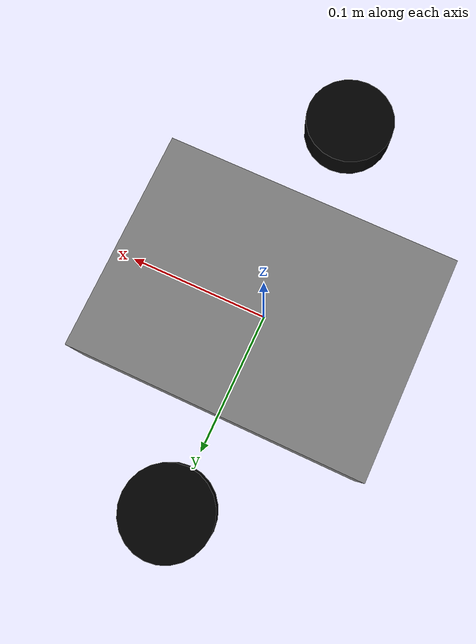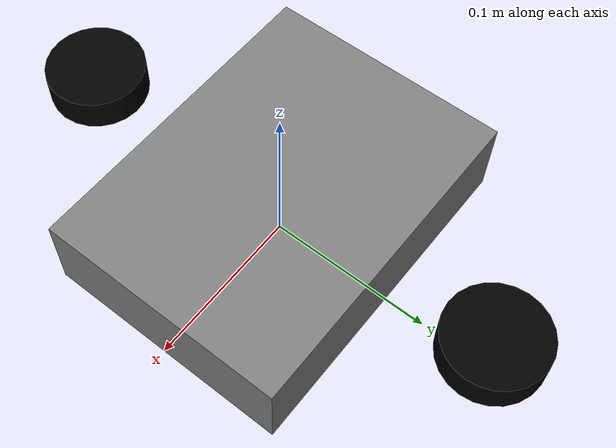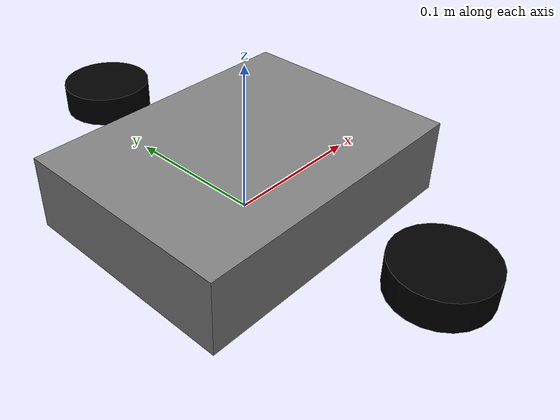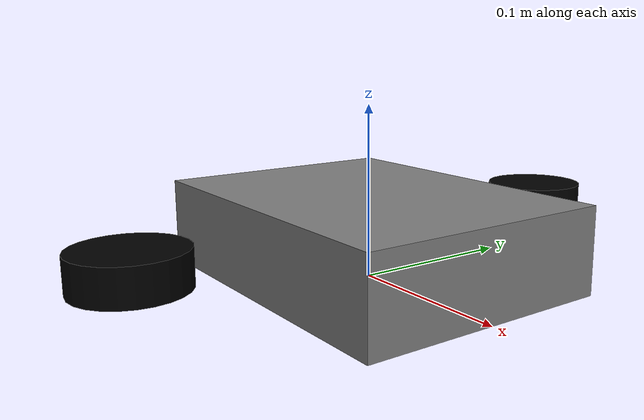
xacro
<?xml version="1.0"?>
<robot name="xiaoR_geek_chassis" xmlns:xacro="http://ros.org/wiki/xacro">

  <!-- Parameters: change these to match your robot -->
  <xacro:property name="wheel_radius" value="0.03"/>        <!-- 3 cm -->
  <xacro:property name="wheel_width" value="0.02"/>         <!-- optional thickness -->
  <xacro:property name="wheel_separation" value="0.14"/>    <!-- distance between left & right wheels -->
  <xacro:property name="chassis_length" value="0.20"/>       <!-- front-to-back -->
  <xacro:property name="chassis_width" value="0.15"/>        <!-- side to side -->
  <xacro:property name="chassis_height" value="0.05"/>       <!-- thickness / height off ground -->
  <xacro:property name="mass_chassis" value="1.0"/>          <!-- kg -->
  <xacro:property name="mass_wheel" value="0.1"/>            <!-- kg per wheel -->

  <!-- Base/chassis link -->
  <link name="base_link">
    <visual>
      <geometry>
        <box size="${chassis_length} ${chassis_width} ${chassis_height}"/>
      </geometry>
      <origin xyz="0 0 ${chassis_height/2}" rpy="0 0 0"/>
      <material name="Grey">
        <color rgba="0.5 0.5 0.5 1.0"/>
      </material>
    </visual>
    <collision>
      <geometry>
        <box size="${chassis_length} ${chassis_width} ${chassis_height}"/>
      </geometry>
      <origin xyz="0 0 ${chassis_height/2}" rpy="0 0 0"/>
    </collision>
    <inertial>
      <mass value="${mass_chassis}"/>
      <!-- approximate inertia of a rectangle box about its center -->
      <inertia
        ixx="${(1.0/12.0) * mass_chassis * ( chassis_width*chassis_width + chassis_height*chassis_height )}"
        iyy="${(1.0/12.0) * mass_chassis * ( chassis_length*chassis_length + chassis_height*chassis_height )}"
        izz="${(1.0/12.0) * mass_chassis * ( chassis_length*chassis_length + chassis_width*chassis_width )}"
        ixy="0" ixz="0" iyz="0"/>
    </inertial>
  </link>

  <!-- Left wheel -->
  <link name="wheel_left">
    <visual>
      <geometry>
        <cylinder radius="${wheel_radius}" length="${wheel_width}"/>
      </geometry>
      <!-- align cylinder axis with the wheel axle (y-axis), shift so it touches the ground -->
      <origin xyz="0 ${wheel_separation/2} ${wheel_radius}" rpy="0 0 ${pi/2}"/>
      <material name="Black">
        <color rgba="0 0 0 1.0"/>
      </material>
    </visual>
    <collision>
      <geometry>
        <cylinder radius="${wheel_radius}" length="${wheel_width}"/>
      </geometry>
      <origin xyz="0 ${wheel_separation/2} ${wheel_radius}" rpy="0 0 ${pi/2}"/>
    </collision>
    <inertial>
      <mass value="${mass_wheel}"/>
      <inertia
        ixx="${(1.0/12.0) * mass_wheel * ( 3*wheel_radius*wheel_radius + wheel_width*wheel_width )}"
        iyy="${(1.0/12.0) * mass_wheel * ( 3*wheel_radius*wheel_radius + wheel_width*wheel_width )}"
        izz="${(1.0/2.0) * mass_wheel * (wheel_radius*wheel_radius)}"
        ixy="0" ixz="0" iyz="0"/>
    </inertial>
  </link>

  <!-- Right wheel -->
  <link name="wheel_right">
    <visual>
      <geometry>
        <cylinder radius="${wheel_radius}" length="${wheel_width}"/>
      </geometry>
      <origin xyz="0 -${wheel_separation/2} ${wheel_radius}" rpy="0 0 ${pi/2}"/>
      <material name="Black">
        <color rgba="0 0 0 1.0"/>
      </material>
    </visual>
    <collision>
      <geometry>
        <cylinder radius="${wheel_radius}" length="${wheel_width}"/>
      </geometry>
      <origin xyz="0 -${wheel_separation/2} ${wheel_radius}" rpy="0 0 ${pi/2}"/>
    </collision>
    <inertial>
      <mass value="${mass_wheel}"/>
      <inertia
        ixx="${(1.0/12.0) * mass_wheel * ( 3*wheel_radius*wheel_radius + wheel_width*wheel_width )}"
        iyy="${(1.0/12.0) * mass_wheel * ( 3*wheel_radius*wheel_radius + wheel_width*wheel_width )}"
        izz="${(1.0/2.0) * mass_wheel * (wheel_radius*wheel_radius)}"
        ixy="0" ixz="0" iyz="0"/>
    </inertial>
  </link>

  <!-- Joints connecting wheels to base -->
  <joint name="joint_wheel_left" type="continuous">
    <parent link="base_link"/>
    <child  link="wheel_left"/>
    <origin xyz="0 ${wheel_separation/2} 0" rpy="0 0 0"/>
    <axis xyz="0 1 0"/>
  </joint>

  <joint name="joint_wheel_right" type="continuous">
    <parent link="base_link"/>
    <child  link="wheel_right"/>
    <origin xyz="0 -${wheel_separation/2} 0" rpy="0 0 0"/>
    <axis xyz="0 1 0"/>
  </joint>

</robot>
